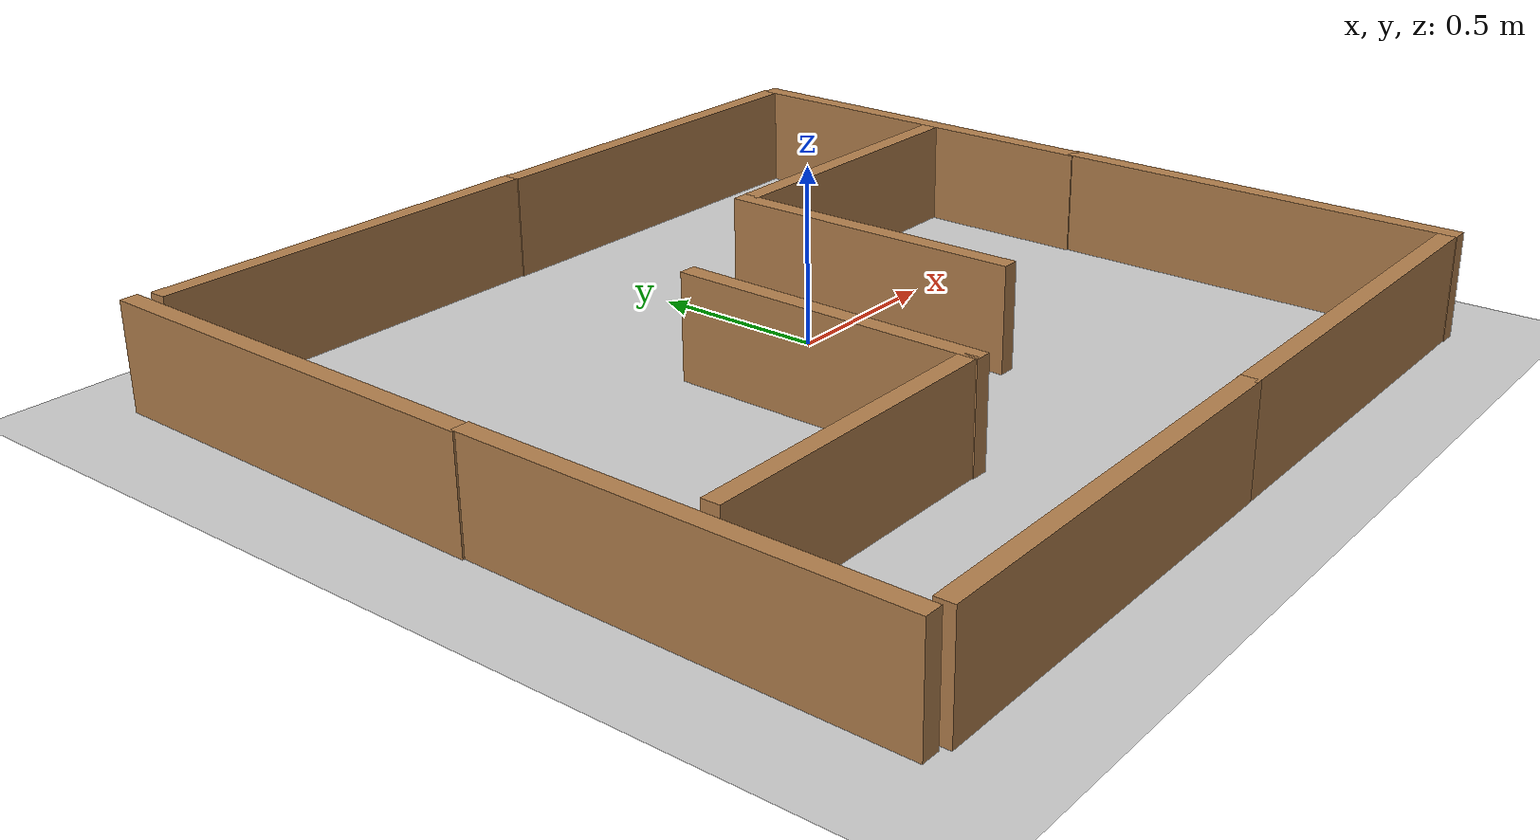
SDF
<sdf version="1.7">
 <world name="default">
  <light name="sun" type="directional">
   <pose>0 0 10 0 -0 0</pose>
   <diffuse>0.8 0.8 0.8 1</diffuse>
   <specular>0.2 0.2 0.2 1</specular>
   <attenuation>
    <range>1000</range>
    <constant>0.9</constant>
    <linear>0.01</linear>
    <quadratic>0.001</quadratic>
   </attenuation>
   <direction>-0.5 0.1 -0.9</direction>
   <spot><inner_angle>0</inner_angle><outer_angle>0</outer_angle><falloff>0</falloff></spot>
  </light>
  <gravity>0 0 -9.8</gravity>
  <magnetic_field>6e-06 2.3e-05 -4.2e-05</magnetic_field>
  <atmosphere type="adiabatic"/>
  <physics type="ode">
   <max_step_size>0.001</max_step_size>
   <real_time_factor>1</real_time_factor>
   <real_time_update_rate>1000</real_time_update_rate>
  </physics>
  <scene><ambient>0.4 0.4 0.4 1</ambient><background>0.7 0.7 0.7 1</background><shadows>1</shadows></scene>
  <spherical_coordinates>
   <surface_model>EARTH_WGS84</surface_model>
   <latitude_deg>0</latitude_deg>
   <longitude_deg>0</longitude_deg>
   <elevation>0</elevation>
   <heading_deg>0</heading_deg>
  </spherical_coordinates>
  <include><uri>model://ground_plane</uri></include>
  <model name="wall120cm">
   <pose>0.455978 -1.32818 0 0 -0 0</pose>
   <link name="Wall_11">
    <collision name="Wall_11_Collision">
     <geometry><box><size>1.2 0.05 0.3</size></box></geometry>
     <pose>0 0 0.15 0 -0 0</pose>
    </collision>
    <visual name="Wall_11_Visual">
     <pose>0 0 0.15 0 -0 0</pose>
     <geometry><box><size>1.2 0.05 0.3</size></box></geometry>
     <material>
      <script><uri>file://media/materials/scripts/gazebo.material</uri><name>Gazebo/Wood</name></script>
      <ambient>1 1 1 1</ambient>
     </material>
     <meta><layer>0</layer></meta>
    </visual>
   </link>
   <static>1</static>
  </model>
  <model name="wall120cm_0">
   <pose>-0.725104 -1.32902 0 0 -0 0</pose>
   <link name="Wall_11">
    <collision name="Wall_11_Collision">
     <geometry><box><size>1.2 0.05 0.3</size></box></geometry>
     <pose>0 0 0.15 0 -0 0</pose>
    </collision>
    <visual name="Wall_11_Visual">
     <pose>0 0 0.15 0 -0 0</pose>
     <geometry><box><size>1.2 0.05 0.3</size></box></geometry>
     <material>
      <script><uri>file://media/materials/scripts/gazebo.material</uri><name>Gazebo/Wood</name></script>
      <ambient>1 1 1 1</ambient>
     </material>
     <meta><layer>0</layer></meta>
    </visual>
   </link>
   <static>1</static>
  </model>
  <model name="wall120cm_1">
   <pose>0.497557 1.00872 0 0 -0 0</pose>
   <link name="Wall_11">
    <collision name="Wall_11_Collision">
     <geometry><box><size>1.2 0.05 0.3</size></box></geometry>
     <pose>0 0 0.15 0 -0 0</pose>
    </collision>
    <visual name="Wall_11_Visual">
     <pose>0 0 0.15 0 -0 0</pose>
     <geometry><box><size>1.2 0.05 0.3</size></box></geometry>
     <material>
      <script><uri>file://media/materials/scripts/gazebo.material</uri><name>Gazebo/Wood</name></script>
      <ambient>1 1 1 1</ambient>
     </material>
     <meta><layer>0</layer></meta>
    </visual>
   </link>
   <static>1</static>
  </model>
  <model name="wall120cm_2">
   <pose>-0.685339 1.01295 0 0 -0 0</pose>
   <link name="Wall_11">
    <collision name="Wall_11_Collision">
     <geometry><box><size>1.2 0.05 0.3</size></box></geometry>
     <pose>0 0 0.15 0 -0 0</pose>
    </collision>
    <visual name="Wall_11_Visual">
     <pose>0 0 0.15 0 -0 0</pose>
     <geometry><box><size>1.2 0.05 0.3</size></box></geometry>
     <material>
      <script><uri>file://media/materials/scripts/gazebo.material</uri><name>Gazebo/Wood</name></script>
      <ambient>1 1 1 1</ambient>
     </material>
     <meta><layer>0</layer></meta>
    </visual>
   </link>
   <static>1</static>
  </model>
  <model name="wall120cm_3">
   <pose>1.08861 -0.756334 0 0 -0 1.55369</pose>
   <link name="Wall_11">
    <collision name="Wall_11_Collision">
     <geometry><box><size>1.2 0.05 0.3</size></box></geometry>
     <pose>0 0 0.15 0 -0 0</pose>
    </collision>
    <visual name="Wall_11_Visual">
     <pose>0 0 0.15 0 -0 0</pose>
     <geometry><box><size>1.2 0.05 0.3</size></box></geometry>
     <material>
      <script><uri>file://media/materials/scripts/gazebo.material</uri><name>Gazebo/Wood</name></script>
      <ambient>1 1 1 1</ambient>
     </material>
     <meta><layer>0</layer></meta>
    </visual>
   </link>
   <static>1</static>
  </model>
  <model name="wall120cm_4">
   <pose>1.10263 0.427178 0 0 -0 1.55591</pose>
   <link name="Wall_11">
    <collision name="Wall_11_Collision">
     <geometry><box><size>1.2 0.05 0.3</size></box></geometry>
     <pose>0 0 0.15 0 -0 0</pose>
    </collision>
    <visual name="Wall_11_Visual">
     <pose>0 0 0.15 0 -0 0</pose>
     <geometry><box><size>1.2 0.05 0.3</size></box></geometry>
     <material>
      <script><uri>file://media/materials/scripts/gazebo.material</uri><name>Gazebo/Wood</name></script>
      <ambient>1 1 1 1</ambient>
     </material>
     <meta><layer>0</layer></meta>
    </visual>
   </link>
   <static>1</static>
  </model>
  <model name="wall120cm_5">
   <pose>-1.35718 -0.734535 0 0 0 -1.58352</pose>
   <link name="Wall_11">
    <collision name="Wall_11_Collision">
     <geometry><box><size>1.2 0.05 0.3</size></box></geometry>
     <pose>0 0 0.15 0 -0 0</pose>
    </collision>
    <visual name="Wall_11_Visual">
     <pose>0 0 0.15 0 -0 0</pose>
     <geometry><box><size>1.2 0.05 0.3</size></box></geometry>
     <material>
      <script><uri>file://media/materials/scripts/gazebo.material</uri><name>Gazebo/Wood</name></script>
      <ambient>1 1 1 1</ambient>
     </material>
     <meta><layer>0</layer></meta>
    </visual>
   </link>
   <static>1</static>
  </model>
  <model name="wall120cm_6">
   <pose>-1.3459 0.452746 0 0 0 -1.58608</pose>
   <link name="Wall_11">
    <collision name="Wall_11_Collision">
     <geometry><box><size>1.2 0.05 0.3</size></box></geometry>
     <pose>0 0 0.15 0 -0 0</pose>
    </collision>
    <visual name="Wall_11_Visual">
     <pose>0 0 0.15 0 -0 0</pose>
     <geometry><box><size>1.2 0.05 0.3</size></box></geometry>
     <material>
      <script><uri>file://media/materials/scripts/gazebo.material</uri><name>Gazebo/Wood</name></script>
      <ambient>1 1 1 1</ambient>
     </material>
     <meta><layer>0</layer></meta>
    </visual>
   </link>
   <static>1</static>
  </model>
  <model name="wall90cm">
   <pose>0.63257 0.349271 0 0 -0 0</pose>
   <link name="Wall_6">
    <collision name="Wall_6_Collision">
     <geometry><box><size>0.9 0.05 0.3</size></box></geometry>
     <pose>0 0 0.15 0 -0 0</pose>
    </collision>
    <visual name="Wall_6_Visual">
     <pose>0 0 0.15 0 -0 0</pose>
     <geometry><box><size>0.9 0.05 0.3</size></box></geometry>
     <material>
      <script><uri>file://media/materials/scripts/gazebo.material</uri><name>Gazebo/Wood</name></script>
      <ambient>1 1 1 1</ambient>
     </material>
     <meta><layer>0</layer></meta>
    </visual>
   </link>
   <static>1</static>
  </model>
  <model name="wall90cm_0">
   <pose>-0.842133 -0.768397 0 0 -0 0</pose>
   <link name="Wall_6">
    <collision name="Wall_6_Collision">
     <geometry><box><size>0.9 0.05 0.3</size></box></geometry>
     <pose>0 0 0.15 0 -0 0</pose>
    </collision>
    <visual name="Wall_6_Visual">
     <pose>0 0 0.15 0 -0 0</pose>
     <geometry><box><size>0.9 0.05 0.3</size></box></geometry>
     <material>
      <script><uri>file://media/materials/scripts/gazebo.material</uri><name>Gazebo/Wood</name></script>
      <ambient>1 1 1 1</ambient>
     </material>
     <meta><layer>0</layer></meta>
    </visual>
   </link>
   <static>1</static>
  </model>
  <model name="wall90cm_1">
   <pose>0.165762 -0.077002 0 0 -0 1.56761</pose>
   <link name="Wall_6">
    <collision name="Wall_6_Collision">
     <geometry><box><size>0.9 0.05 0.3</size></box></geometry>
     <pose>0 0 0.15 0 -0 0</pose>
    </collision>
    <visual name="Wall_6_Visual">
     <pose>0 0 0.15 0 -0 0</pose>
     <geometry><box><size>0.9 0.05 0.3</size></box></geometry>
     <material>
      <script><uri>file://media/materials/scripts/gazebo.material</uri><name>Gazebo/Wood</name></script>
      <ambient>1 1 1 1</ambient>
     </material>
     <meta><layer>0</layer></meta>
    </visual>
   </link>
   <static>1</static>
  </model>
  <model name="wall90cm_2">
   <pose>-0.374024 -0.347779 0 0 0 -1.58919</pose>
   <link name="Wall_6">
    <collision name="Wall_6_Collision">
     <geometry><box><size>0.9 0.05 0.3</size></box></geometry>
     <pose>0 0 0.15 0 -0 0</pose>
    </collision>
    <visual name="Wall_6_Visual">
     <pose>0 0 0.15 0 -0 0</pose>
     <geometry><box><size>0.9 0.05 0.3</size></box></geometry>
     <material>
      <script><uri>file://media/materials/scripts/gazebo.material</uri><name>Gazebo/Wood</name></script>
      <ambient>1 1 1 1</ambient>
     </material>
     <meta><layer>0</layer></meta>
    </visual>
   </link>
   <static>1</static>
  </model>
 </world>
</sdf>
